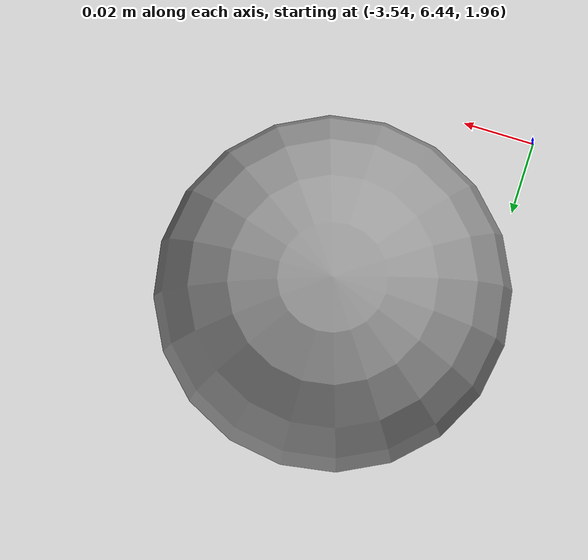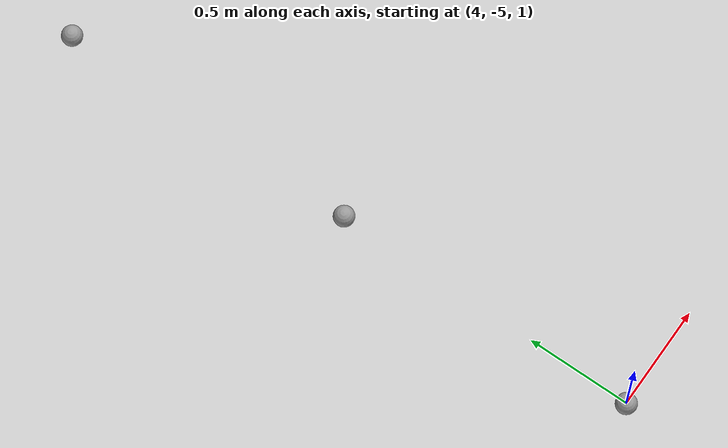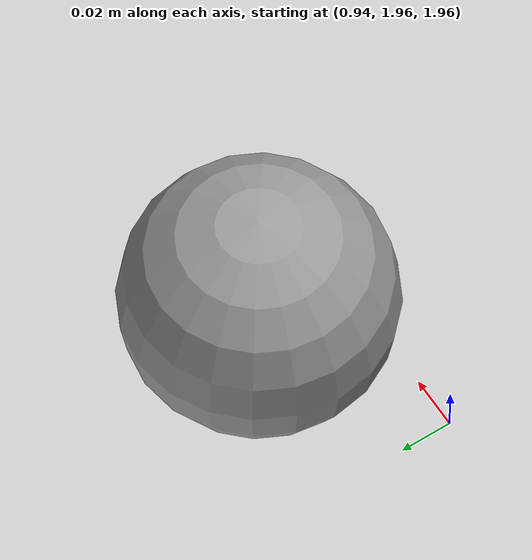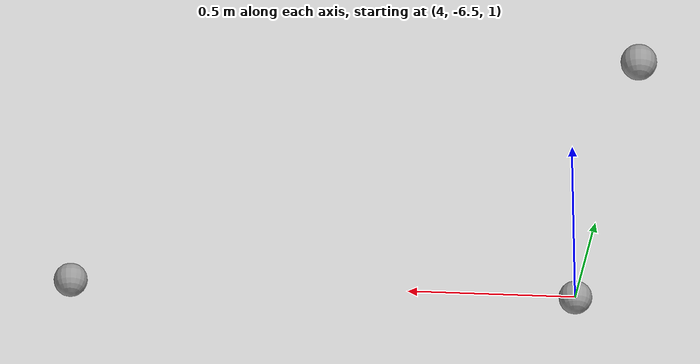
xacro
<?xml version="1.0"?>
<robot name="robot" xmlns:xacro="http://www.ros.org/wiki/xacro">

  <xacro:include filename="$(find mobile_manipulator)/world/urdf/sphere.xacro"/>

  <link name="world"/>

  <xacro:spawn_sphere sphere_name="sphere_0" r="5" xyz="5 5 2"/>

  <xacro:spawn_sphere sphere_name="sphere_1" r="5" xyz="1 2 2"/>
  <xacro:spawn_sphere sphere_name="sphere_2" r="5" xyz="-0.5 3.5 2"/>
  <xacro:spawn_sphere sphere_name="sphere_3" r="5" xyz="-2 5 2"/>
  <xacro:spawn_sphere sphere_name="sphere_4" r="5" xyz="-3.5 6.5 2"/>
  <xacro:spawn_sphere sphere_name="sphere_5" r="5" xyz="-5 6.5 2"/>

  <xacro:spawn_sphere sphere_name="sphere_6" r="5" xyz="4 -2 1"/>
  <xacro:spawn_sphere sphere_name="sphere_7" r="5" xyz="4 -3.5 1"/>
  <xacro:spawn_sphere sphere_name="sphere_8" r="5" xyz="4 -5 1"/>
  <xacro:spawn_sphere sphere_name="sphere_9" r="5" xyz="4 -6.5 1"/>
  <xacro:spawn_sphere sphere_name="sphere_10" r="5" xyz="5.5 -6.5 1"/>
  <gazebo> <static>true</static></gazebo>
</robot>

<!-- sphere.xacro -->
<robot name="robot" xmlns:xacro="http://www.ros.org/wiki/xacro">
  <xacro:macro name="spawn_sphere" params="sphere_name:='sphere_0' r:='1' xyz:='0 0 0' rpy:='0 0 0'">
  <link name="${sphere_name}">
    <inertial>
      <origin xyz="0 0 0" rpy="0 0 0"/>
      <mass value="1"/>
      <inertia ixx="1" ixy="0" ixz="0" iyy="1" iyz="0" izz="1"/>
    </inertial>
    <visual>
      <origin xyz="0 0 0" rpy="0 0 0"/>
      <geometry>
        <sphere radius="${r/100}"/>
      </geometry>
      <material name="Gray" />
    </visual>
    <collision>
      <origin xyz="0 0 0" rpy="0 0 0"/>
      <geometry>
        <sphere radius="${r/100}"/>
      </geometry>
    </collision>
  </link>
  <joint name="world_${sphere_name}_joint" type="fixed">
    <origin xyz="${xyz}" rpy="${rpy}"/>
    <parent link="world"/>
    <child link="${sphere_name}"/>
  </joint>
</xacro:macro>
</robot>
